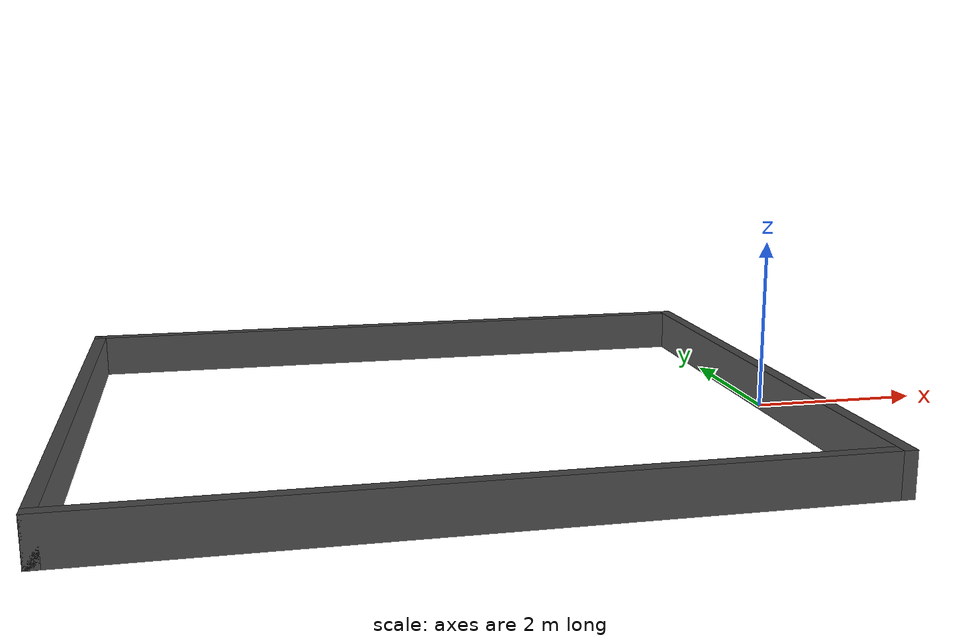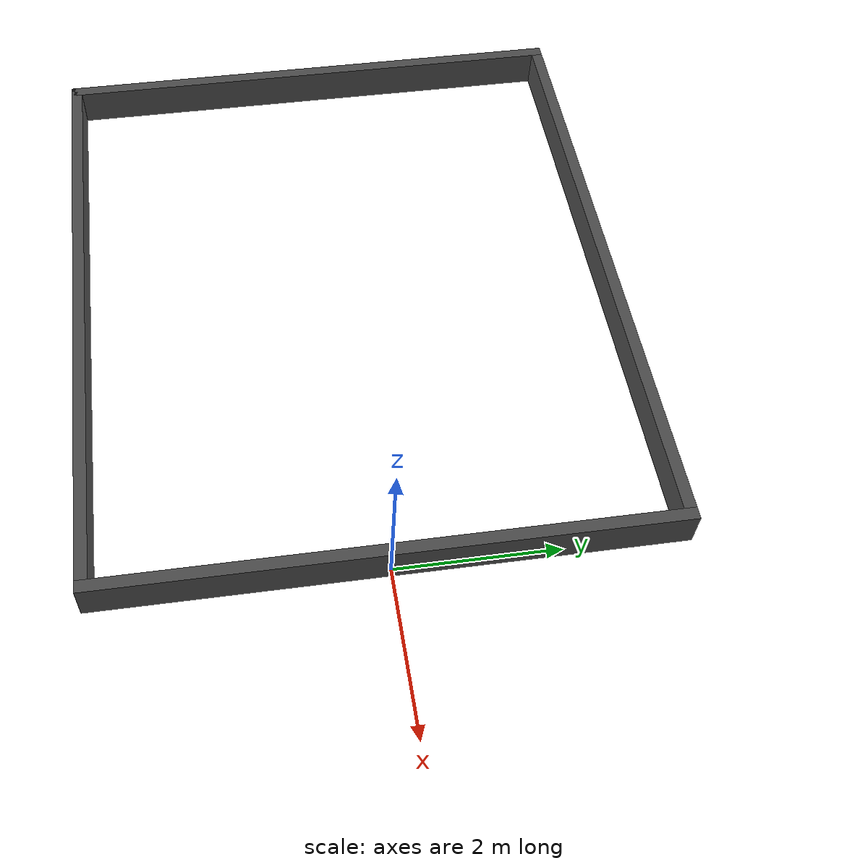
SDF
<?xml version='1.0'?>
<sdf version='1.7'>
  <model name='parede'>
    <link name='Wall_0'>
      <pose>-4.075 -3.425 0.25 0 0 0</pose>
      <self_collide>0</self_collide>
      <enable_wind>0</enable_wind>
      <kinematic>0</kinematic>
      <visual name='Wall_0_Visual'>
        <geometry>
          <box>
            <size>8 0.15 0.5</size>
          </box>
        </geometry>
        <material>
          <script>
            <uri>file://media/materials/scripts/gazebo.material</uri>
            <name>Gazebo/DarkGrey</name>
          </script>
          <ambient>0.5 0.5 0.5 1</ambient>
          <diffuse>1 1 1 1</diffuse>
          <specular>0.2 0.2 0.2 1</specular>
          <emissive>0 0 0 1</emissive>
          <shader type='pixel'/>
        </material>
      </visual>
      <collision name='Wall_0_Collision'>
        <laser_retro>0</laser_retro>
        <max_contacts>10</max_contacts>
        <geometry>
          <box>
            <size>8 0.15 0.5</size>
          </box>
        </geometry>
        <surface>
          <friction>
            <ode>
              <mu>1</mu>
              <mu2>1</mu2>
              <fdir1>0 0 0</fdir1>
              <slip1>0</slip1>
              <slip2>0</slip2>
            </ode>
            <torsional>
              <coefficient>1</coefficient>
              <patch_radius>0</patch_radius>
              <surface_radius>0</surface_radius>
              <use_patch_radius>1</use_patch_radius>
              <ode>
                <slip>0</slip>
              </ode>
            </torsional>
          </friction>
          <bounce>
            <restitution_coefficient>0</restitution_coefficient>
            <threshold>1e+06</threshold>
          </bounce>
          <contact>
            <collide_without_contact>0</collide_without_contact>
            <collide_without_contact_bitmask>1</collide_without_contact_bitmask>
            <collide_bitmask>1</collide_bitmask>
            <ode>
              <soft_cfm>0</soft_cfm>
              <soft_erp>0.2</soft_erp>
              <kp>1e+13</kp>
              <kd>1</kd>
              <max_vel>0.01</max_vel>
              <min_depth>0</min_depth>
            </ode>
            <bullet>
              <split_impulse>1</split_impulse>
              <split_impulse_penetration_threshold>-0.01</split_impulse_penetration_threshold>
              <soft_cfm>0</soft_cfm>
              <soft_erp>0.2</soft_erp>
              <kp>1e+13</kp>
              <kd>1</kd>
            </bullet>
          </contact>
        </surface>
      </collision>
    </link>
    <link name='Wall_1'>
      <pose>0 0 0.25 0 0 0</pose>
      <self_collide>0</self_collide>
      <kinematic>0</kinematic>
      <visual name='Wall_1_Visual'>
        <geometry>
          <box>
            <size>0.15 7 0.5</size>
          </box>
        </geometry>
        <material>
          <script>
            <uri>file://media/materials/scripts/gazebo.material</uri>
            <name>Gazebo/DarkGrey</name>
          </script>
          <ambient>0.5 0.5 0.5 1</ambient>
          <diffuse>1 1 1 1</diffuse>
          <specular>0.2 0.2 0.2 1</specular>
          <emissive>0 0 0 1</emissive>
        </material>
        <transparency>0</transparency>
        <cast_shadows>1</cast_shadows>
      </visual>
      <collision name='Wall_1_Collision'>
        <laser_retro>0</laser_retro>
        <max_contacts>10</max_contacts>
        <geometry>
          <box>
            <size>0.15 7 0.5</size>
          </box>
        </geometry>
        <surface>
          <friction>
            <ode>
              <mu>1</mu>
              <mu2>1</mu2>
              <fdir1>0 0 0</fdir1>
              <slip1>0</slip1>
              <slip2>0</slip2>
            </ode>
            <torsional>
              <coefficient>1</coefficient>
              <patch_radius>0</patch_radius>
              <surface_radius>0</surface_radius>
              <use_patch_radius>1</use_patch_radius>
              <ode>
                <slip>0</slip>
              </ode>
            </torsional>
          </friction>
          <bounce>
            <restitution_coefficient>0</restitution_coefficient>
            <threshold>1e+06</threshold>
          </bounce>
          <contact>
            <collide_without_contact>0</collide_without_contact>
            <collide_without_contact_bitmask>1</collide_without_contact_bitmask>
            <ode>
              <soft_cfm>0</soft_cfm>
              <soft_erp>0.2</soft_erp>
              <kp>1e+13</kp>
              <kd>1</kd>
              <max_vel>0.01</max_vel>
              <min_depth>0</min_depth>
            </ode>
            <bullet>
              <split_impulse>1</split_impulse>
              <split_impulse_penetration_threshold>-0.01</split_impulse_penetration_threshold>
              <soft_cfm>0</soft_cfm>
              <soft_erp>0.2</soft_erp>
              <kp>1e+13</kp>
              <kd>1</kd>
            </bullet>
          </contact>
        </surface>
      </collision>
    </link>
    <link name='Wall_2'>
      <pose>-8 0 0.25 0 0 0 0</pose>
      <self_collide>0</self_collide>
      <enable_wind>0</enable_wind>
      <kinematic>0</kinematic>
      <visual name='Wall_2_Visual'>
        <geometry>
          <box>
            <size>0.15 7 0.5</size>
          </box>
        </geometry>
        <material>
          <script>
            <uri>file://media/materials/scripts/gazebo.material</uri>
            <name>Gazebo/DarkGrey</name>
          </script>
          <ambient>0.5 0.5 0.5 1</ambient>
          <diffuse>1 1 1 1</diffuse>
          <specular>0.2 0.2 0.2 1</specular>
          <emissive>0 0 0 1</emissive>
          <shader type='pixel'/>
        </material>
        <meta>
          <layer>0</layer>
        </meta>
        <transparency>0</transparency>
        <cast_shadows>1</cast_shadows>
      </visual>
      <collision name='Wall_2_Collision'>
        <laser_retro>0</laser_retro>
        <max_contacts>10</max_contacts>
        <geometry>
          <box>
            <size>0.15 7 0.5</size>
          </box>
        </geometry>
        <surface>
          <friction>
            <ode>
              <mu>1</mu>
              <mu2>1</mu2>
              <fdir1>0 0 0</fdir1>
              <slip1>0</slip1>
              <slip2>0</slip2>
            </ode>
            <torsional>
              <coefficient>1</coefficient>
              <patch_radius>0</patch_radius>
              <surface_radius>0</surface_radius>
              <use_patch_radius>1</use_patch_radius>
              <ode>
                <slip>0</slip>
              </ode>
            </torsional>
          </friction>
          <bounce>
            <restitution_coefficient>0</restitution_coefficient>
            <threshold>1e+06</threshold>
          </bounce>
          <contact>
            <collide_without_contact>0</collide_without_contact>
            <collide_without_contact_bitmask>1</collide_without_contact_bitmask>
            <collide_bitmask>1</collide_bitmask>
            <ode>
              <soft_cfm>0</soft_cfm>
              <soft_erp>0.2</soft_erp>
              <kp>1e+13</kp>
              <kd>1</kd>
              <max_vel>0.01</max_vel>
              <min_depth>0</min_depth>
            </ode>
            <bullet>
              <split_impulse>1</split_impulse>
              <split_impulse_penetration_threshold>-0.01</split_impulse_penetration_threshold>
              <soft_cfm>0</soft_cfm>
              <soft_erp>0.2</soft_erp>
              <kp>1e+13</kp>
              <kd>1</kd>
            </bullet>
          </contact>
        </surface>
      </collision>
    </link>
    <link name='Wall_3'>
      <pose>-4.075 3.425 0.25 0 0 0</pose>
      <self_collide>0</self_collide>
      <enable_wind>0</enable_wind>
      <kinematic>0</kinematic>
      <visual name='Wall_3_Visual'>
        <geometry>
          <box>
            <size>8 0.15 0.5</size>
          </box>
        </geometry>
        <material>
          <script>
            <uri>file://media/materials/scripts/gazebo.material</uri>
            <name>Gazebo/DarkGrey</name>
          </script>
          <ambient>0.5 0.5 0.5 1</ambient>
          <diffuse>1 1 1 1</diffuse>
          <specular>0.2 0.2 0.2 1</specular>
          <emissive>0 0 0 1</emissive>
          <shader type='pixel'/>
        </material>
        <meta>
          <layer>0</layer>
        </meta>
        <transparency>0</transparency>
        <cast_shadows>1</cast_shadows>
      </visual>
      <collision name='Wall_3_Collision'>
        <laser_retro>0</laser_retro>
        <max_contacts>10</max_contacts>
        <geometry>
          <box>
            <size>8 0.15 0.5</size>
          </box>
        </geometry>
        <surface>
          <friction>
            <ode>
              <mu>1</mu>
              <mu2>1</mu2>
              <fdir1>0 0 0</fdir1>
              <slip1>0</slip1>
              <slip2>0</slip2>
            </ode>
            <torsional>
              <coefficient>1</coefficient>
              <patch_radius>0</patch_radius>
              <surface_radius>0</surface_radius>
              <use_patch_radius>1</use_patch_radius>
              <ode>
                <slip>0</slip>
              </ode>
            </torsional>
          </friction>
          <bounce>
            <restitution_coefficient>0</restitution_coefficient>
            <threshold>1e+06</threshold>
          </bounce>
          <contact>
            <collide_without_contact>0</collide_without_contact>
            <collide_without_contact_bitmask>1</collide_without_contact_bitmask>
            <collide_bitmask>1</collide_bitmask>
            <ode>
              <soft_cfm>0</soft_cfm>
              <soft_erp>0.2</soft_erp>
              <kp>1e+13</kp>
              <kd>1</kd>
              <max_vel>0.01</max_vel>
              <min_depth>0</min_depth>
            </ode>
            <bullet>
              <split_impulse>1</split_impulse>
              <split_impulse_penetration_threshold>-0.01</split_impulse_penetration_threshold>
              <soft_cfm>0</soft_cfm>
              <soft_erp>0.2</soft_erp>
              <kp>1e+13</kp>
              <kd>1</kd>
            </bullet>
          </contact>
        </surface>
      </collision>
    </link>
    <static>1</static>
    <allow_auto_disable>1</allow_auto_disable>
  </model>
</sdf>
